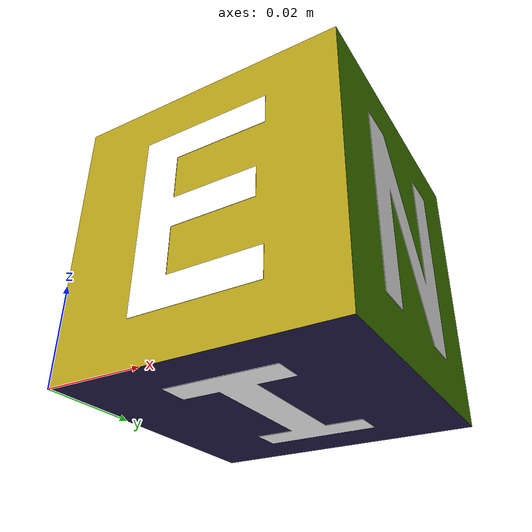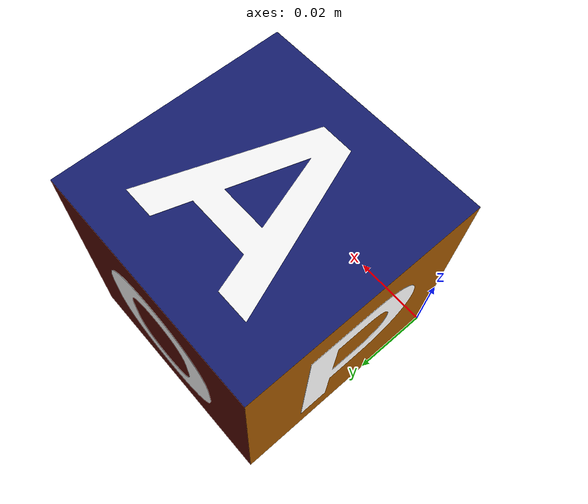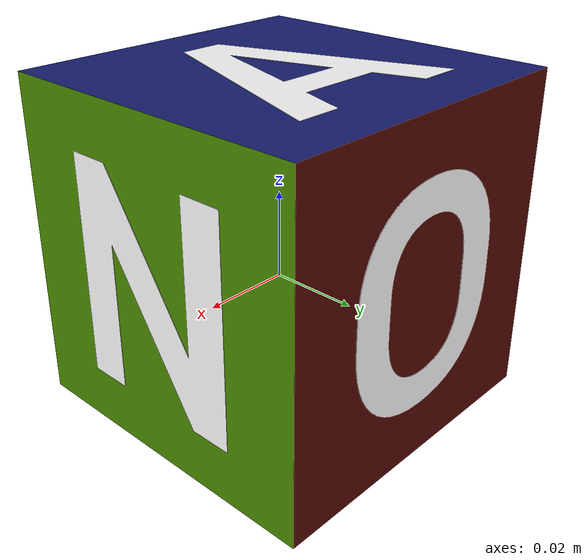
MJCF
<mujoco model="rubik-v1.50">
    <asset>
        <!-- colors were picked using color picker on real basler camera images in setup -->
        <material name="top_background" specular="1" shininess=".3" rgba="0.09 0.12 0.45 1" />
        <material name="bottom_background" specular="1" shininess=".3" rgba="0.13 0.10 0.27 1" />
        <material name="front_background" specular="1" shininess=".3" rgba="0.70 0.62 0.09 1" />
        <material name="back_background" specular="1" shininess=".3" rgba="0.33 0.04 0.02 1" />
        <material name="right_background" specular="1" shininess=".3" rgba="0.29 0.54 0 1" />
        <material name="left_background" specular="1" shininess=".3" rgba="0.62 0.33 0 1" />

        <material name="letter" specular="1" shininess=".3" rgba="1 1 1 1" />

        <mesh file="openai_cube/O.stl" name="O" />
        <mesh file="openai_cube/P.stl" name="P" />
        <mesh file="openai_cube/E.stl" name="E" />
        <mesh file="openai_cube/N.stl" name="N" />
        <mesh file="openai_cube/A.stl" name="A" />
        <mesh file="openai_cube/I.stl" name="I" />
    </asset>
    <compiler angle="radian"/>

    <worldbody>
        <body name="middle" pos="0.0285 0.0285 0.0285">
            <geom name="middle" type="box" size="0.0285 0.0285 0.0285" rgba="1 1 1 0" condim="4"/>

            <site name="center" pos="0 0 0" rgba="1 0 0 1" size="0.01 0.01 0.01"></site>
            <joint name="cube_tx" type="slide" axis="1 0 0" limited="false"/>
            <joint name="cube_ty" type="slide" axis="0 1 0" limited="false"/>
            <joint name="cube_tz" type="slide" axis="0 0 1" limited="false"/>
            <joint name="cube_rot" type="ball" limited="false"/>

            <body name="face_top" pos="0 0 0.0285">
                <geom name="face_top_bg" type="box" size="0.0285 0.0285 0.00001" material="top_background" />
                <geom name="A" type="mesh" mesh="A" euler="1.570796 0 1.570796" pos="0 0 -0.0009" material="letter" conaffinity="0" contype="0" />
            </body>

            <body name="face_bottom" pos="0 0 -0.0285">
                <geom name="face_bottom_bg" type="box" size="0.0285 0.0285 0.00001" conaffinity="0" contype="0" material="bottom_background"  />
                <geom name="I" type="mesh" mesh="I" euler="1.570796 0 1.570796" pos="0 0 0.0009" material="letter" conaffinity="0" contype="0" />
            </body>

            <body name="face_back" pos="0 0.0285 0">
                <geom name="face_back_bg" type="box" size="0.0285 0.00001 0.0285" conaffinity="0" contype="0" material="back_background" />
                <geom name="O" type="mesh" mesh="O" euler="0 0 1.570796" pos="0 -0.0009 0" material="letter" conaffinity="0" contype="0" />
            </body>

            <body name="face_right" pos="0.0285 0 0">
                <geom name="face_right_bg" type="box" size="0.00001 0.0285 0.0285" conaffinity="0" contype="0" material="right_background"/>
                <geom name="N" type="mesh" mesh="N" euler="0 0 0" pos="-0.0009 0 0" material="letter" conaffinity="0" contype="0" />
            </body>

            <body name="face_front" pos="0 -0.0285 0">
                <geom name="face_front_bg" type="box" size="0.0285 0.00001 0.0285" conaffinity="0" contype="0" material="front_background" />
                <geom name="E" type="mesh" mesh="E" euler="0 0 -1.570796" pos="0 0.0009 0" material="letter" conaffinity="0" contype="0" />
            </body>

            <body name="face_left" pos="-0.0285 0 0">
                <geom name="face_left_bg" type="box" size="0.00001 0.0285 0.0285" conaffinity="0" contype="0" material="left_background" />
                <geom name="P" type="mesh" mesh="P" euler="0 0 3.14159" pos="0.0009 0 0" material="letter" conaffinity="0" contype="0" />
            </body>
        </body>
        <body name="annotation:outer_bound" pos="0.0285 0.0285 0.0285">
            <geom conaffinity="0" contype="0" mass="0" pos="0 0 0" rgba="0.417022 0.720324 0.000114 0.1" size="0.0285 0.0285 0.0285" type="box"></geom>
        </body>
    </worldbody>

</mujoco>
